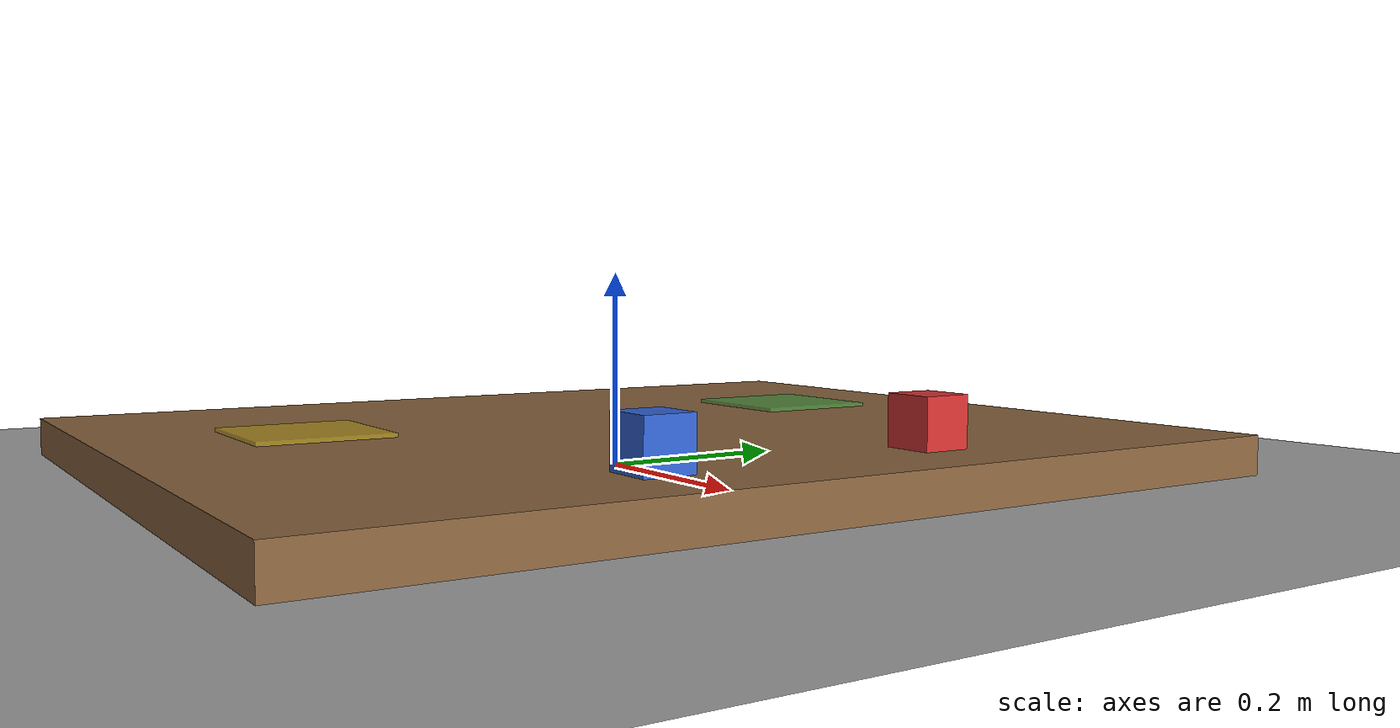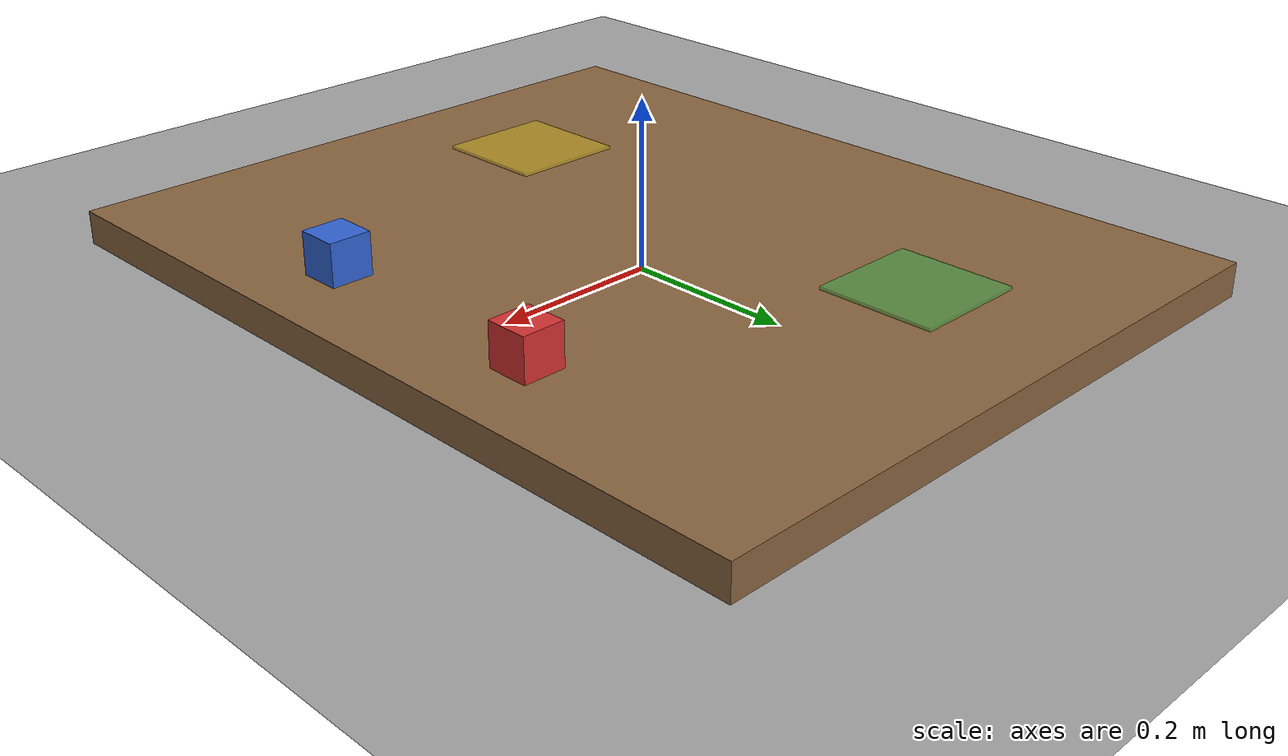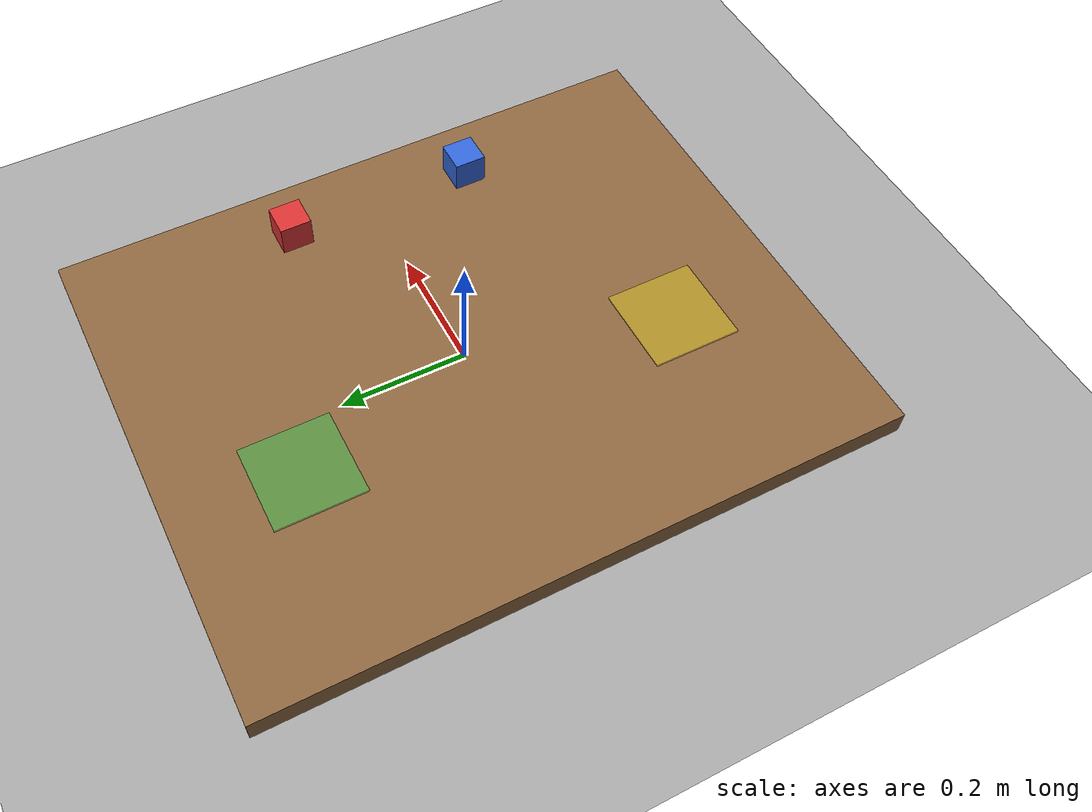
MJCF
<mujoco model="ur5e_scene">

  <compiler angle="radian" autolimits="true"/>

  <option timestep="0.002" gravity="0 0 -9.81"/>

  <visual>
    <headlight ambient="0.4 0.4 0.4" diffuse="0.8 0.8 0.8" specular="0.1 0.1 0.1"/>
    <rgba haze="0.15 0.25 0.35 1"/>
  </visual>

  <worldbody>

    <light name="main_light" pos="0 0 2.5" dir="0 0 -1"
           diffuse="0.8 0.8 0.8" specular="0.2 0.2 0.2" castshadow="true"/>
    <light name="fill_light" pos="1 1 2" dir="-1 -1 -1"
           diffuse="0.3 0.3 0.3" specular="0 0 0" castshadow="false"/>

    <!-- Ground plane -->
    <geom name="ground" type="plane" size="3 3 0.1"
          rgba="0.65 0.65 0.65 1" friction="0.8 0.005 0.0001"/>

    <!-- Table: top surface at z=0.04 -->
    <body name="table" pos="0 0 0.02">
      <geom name="table_top" type="box" size="0.40 0.50 0.02"
            rgba="0.55 0.40 0.25 1" friction="0.8 0.005 0.0001"/>
    </body>

    <!-- Block A (red) -->
    <body name="block_a" pos="0.30 0.15 0.065">
      <freejoint name="block_a_joint"/>
      <geom name="block_a_geom" type="box" size="0.025 0.025 0.025"
            rgba="0.85 0.20 0.20 1" mass="0.05" friction="0.9 0.005 0.0001"/>
    </body>

    <!-- Block B (blue) -->
    <body name="block_b" pos="0.30 -0.15 0.065">
      <freejoint name="block_b_joint"/>
      <geom name="block_b_geom" type="box" size="0.025 0.025 0.025"
            rgba="0.20 0.40 0.85 1" mass="0.05" friction="0.9 0.005 0.0001"/>
    </body>

    <!-- Palette A (green, visual only) -->
    <body name="palette_a" pos="-0.10 0.30 0.042">
      <geom name="palette_a_geom" type="box" size="0.07 0.07 0.002"
            rgba="0.20 0.75 0.30 0.5" contype="0" conaffinity="0"/>
    </body>

    <!-- Palette B (yellow, visual only) -->
    <body name="palette_b" pos="-0.10 -0.30 0.042">
      <geom name="palette_b_geom" type="box" size="0.07 0.07 0.002"
            rgba="0.85 0.75 0.10 0.5" contype="0" conaffinity="0"/>
    </body>

  </worldbody>

</mujoco>
